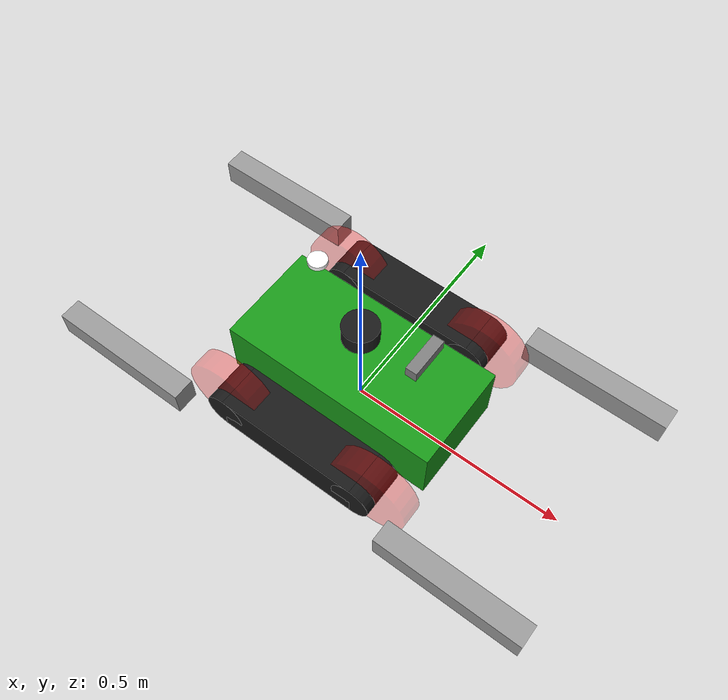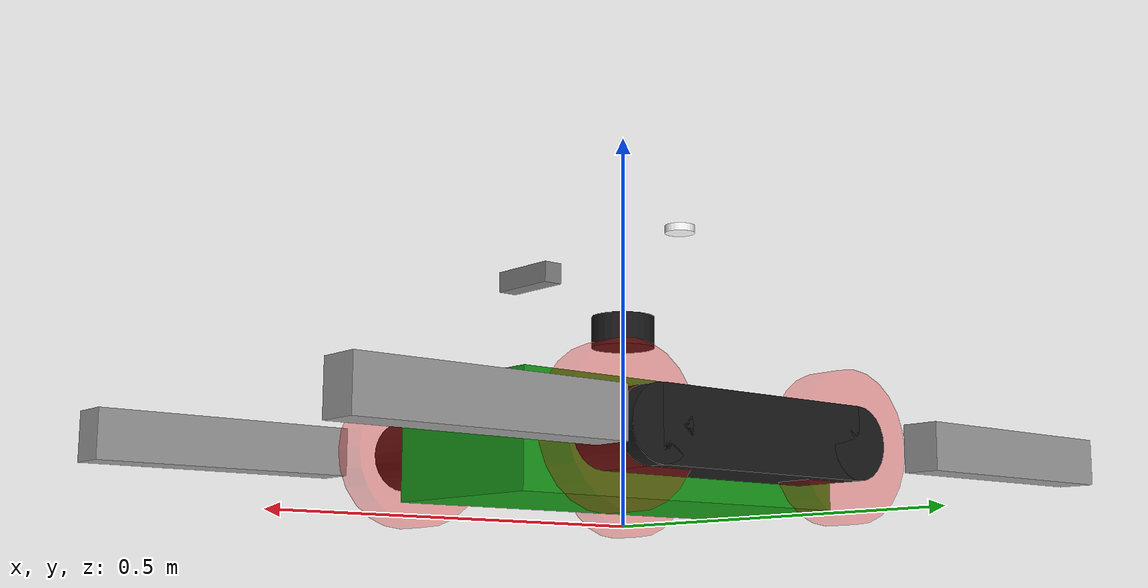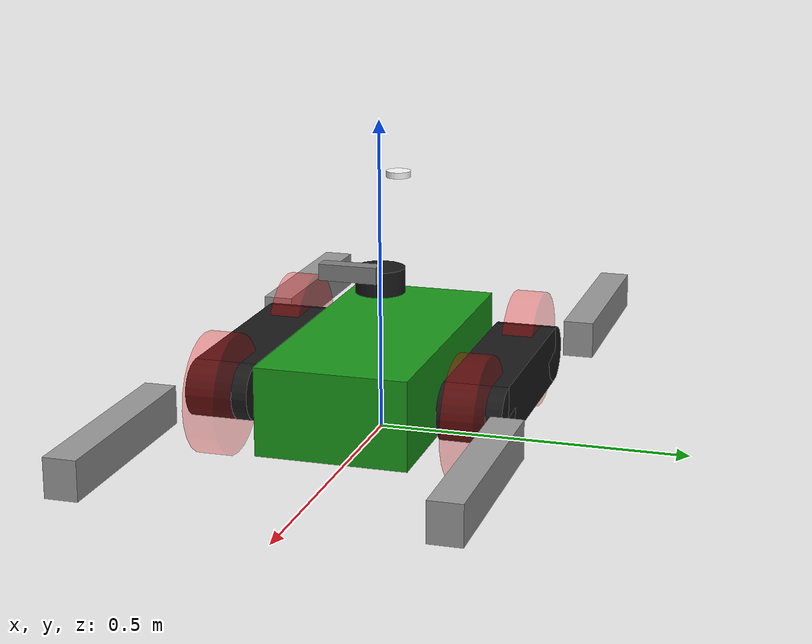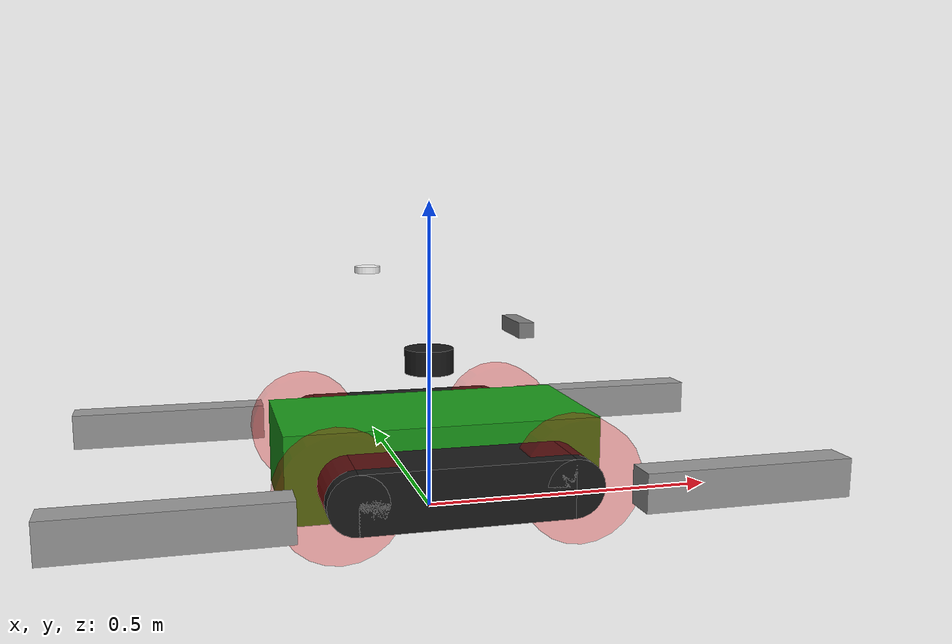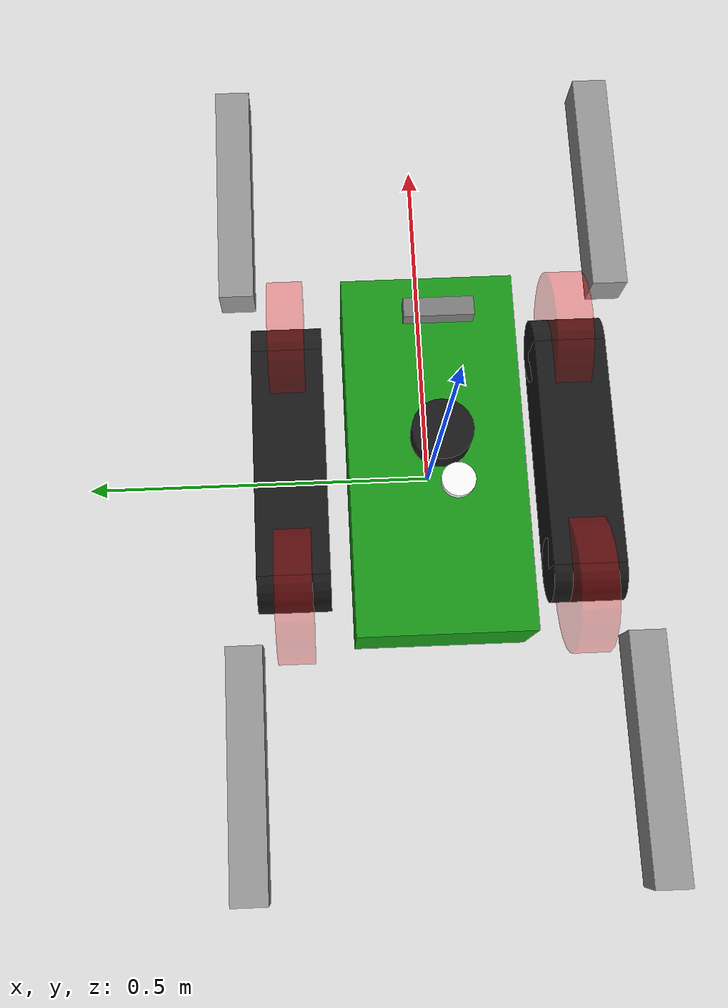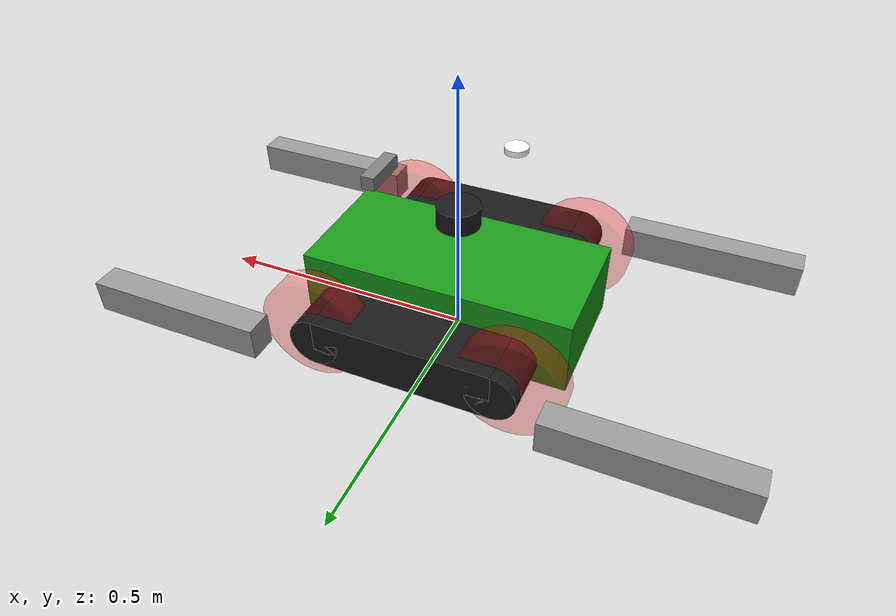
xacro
<?xml version="1.0"?>
<robot name="tracked_mower" xmlns:xacro="http://ros.org/wiki/xacro">

  <xacro:property name="base_mass" value="13.14"/>
  <xacro:property name="base_x" value="0.50"/>
  <xacro:property name="base_y" value="0.24"/>
  <xacro:property name="base_z" value="0.14"/>

  <xacro:property name="track_mass" value="6.06"/>
  <xacro:property name="track_width" value="0.10"/>
  <xacro:property name="track_length" value="0.50"/> <xacro:property name="track_height" value="0.09"/>
  <xacro:property name="track_offset_y" value="0.20"/> <xacro:property name="drive_wheel_radius" value="0.095"/> <xacro:property name="drive_wheel_width" value="0.05"/>

  <link name="base_footprint"/>

  <joint name="base_joint" type="fixed">
    <parent link="base_footprint"/>
    <child link="base_link"/>
    <origin xyz="0 0 ${drive_wheel_radius}" rpy="0 0 0"/>
  </joint>

  <link name="base_link">
    <visual>
      <origin xyz="0 0 0"/>
      <geometry>
        <box size="${base_x} ${base_y} ${base_z}"/>
      </geometry>
      <material name="Green">
        <color rgba="0.1 0.6 0.1 1.0"/>
      </material>
    </visual>
    <collision>
      <geometry>
        <box size="${base_x} ${base_y} ${base_z}"/>
      </geometry>
    </collision>
    <inertial>
      <mass value="${base_mass}"/>
      <inertia ixx="0.1" ixy="0" ixz="0" iyy="0.34" iyz="0" izz="0.30"/>
    </inertial>
  </link>

  <xacro:macro name="visual_track" params="prefix reflect">
    <link name="${prefix}_track_mid_visual">
      <visual>
        <geometry>
          <box size="${track_length - 0.18} ${track_width} ${track_height}"/>
        </geometry>
        <material name="Black">
          <color rgba="0.1 0.1 0.1 1.0"/>
        </material>
      </visual>
      </link>

    <joint name="${prefix}_track_mid_joint" type="fixed">
      <parent link="base_link"/>
      <child link="${prefix}_track_mid_visual"/>
      <origin xyz="0 ${reflect * track_offset_y} 0" rpy="0 0 0"/>
    </joint>

    <link name="${prefix}_track_front_visual">
      <visual>
        <geometry>
          <cylinder radius="${track_height / 2}" length="${track_width}"/>
        </geometry>
        <material name="Black"/>
      </visual>
    </link>

    <joint name="${prefix}_track_front_joint" type="fixed">
      <parent link="base_link"/>
      <child link="${prefix}_track_front_visual"/>
      <origin xyz="${(track_length - 0.18) / 2} ${reflect * track_offset_y} 0" rpy="1.5708 0 0"/>
    </joint>

    <link name="${prefix}_track_rear_visual">
      <visual>
        <geometry>
          <cylinder radius="${track_height / 2}" length="${track_width}"/>
        </geometry>
        <material name="Black"/>
      </visual>
    </link>

    <joint name="${prefix}_track_rear_joint" type="fixed">
      <parent link="base_link"/>
      <child link="${prefix}_track_rear_visual"/>
      <origin xyz="-${(track_length - 0.18) / 2} ${reflect * track_offset_y} 0" rpy="1.5708 0 0"/>
    </joint>
  </xacro:macro>

  <xacro:visual_track prefix="left" reflect="1"/>
  <xacro:visual_track prefix="right" reflect="-1"/>

  <xacro:macro name="drive_wheel" params="prefix location reflect_x reflect_y">
    <link name="${prefix}_${location}_wheel">
      <visual>
        <geometry>
          <cylinder radius="${drive_wheel_radius}" length="${drive_wheel_width}"/>
        </geometry>
        <material name="Transparent">
          <color rgba="1 0 0 0.3"/>
        </material>
      </visual>
      <collision>
        <geometry>
          <cylinder radius="${drive_wheel_radius}" length="${drive_wheel_width}"/>
        </geometry>
        <surface>
          <friction>
            <ode>
              <mu>2.0</mu>
              <mu2>2.0</mu2>
              <fdir1>1 0 0</fdir1>
              <slip1>0.0</slip1>
              <slip2>0.0</slip2>
            </ode>
          </friction>
          <contact>
            <ode>
              <kp>10000000.0</kp>
              <kd>1.0</kd>
            </ode>
          </contact>
        </surface>
      </collision>
      <inertial>
        <mass value="2.0"/>
        <inertia ixx="0.01" ixy="0" ixz="0" iyy="0.01" iyz="0" izz="0.01"/>
      </inertial>
    </link>

    <joint name="${prefix}_${location}_wheel_joint" type="continuous">
      <parent link="base_link"/>
      <child link="${prefix}_${location}_wheel"/>
      <origin xyz="${reflect_x * 0.18} ${reflect_y * track_offset_y} 0" rpy="-1.5708 0 0"/>
      <axis xyz="0 0 1"/>
    </joint>
  </xacro:macro>

  <xacro:drive_wheel prefix="front" location="left"  reflect_x="1"  reflect_y="1"/>
  <xacro:drive_wheel prefix="front" location="right" reflect_x="1"  reflect_y="-1"/>
  <xacro:drive_wheel prefix="rear"  location="left"  reflect_x="-1" reflect_y="1"/>
  <xacro:drive_wheel prefix="rear"  location="right" reflect_x="-1" reflect_y="-1"/>

  <xacro:macro name="flipper" params="prefix location reflect_x reflect_y">
    <link name="${prefix}_${location}_flipper">
      <visual>
        <origin xyz="${reflect_x * 0.165} 0 0" rpy="0 0 0"/> <geometry>
           <box size="0.33 0.05 0.06"/> </geometry>
        <material name="Grey">
          <color rgba="0.6 0.6 0.6 1.0"/>
        </material>
      </visual>
      <collision>
        <origin xyz="${reflect_x * 0.165} 0 0" rpy="0 0 0"/>
        <geometry>
           <box size="0.33 0.05 0.06"/>
        </geometry>
      </collision>
      <inertial>
        <mass value="0.75"/>
        <inertia ixx="0.001" ixy="0" ixz="0" iyy="0.01" iyz="0" izz="0.01"/>
      </inertial>
    </link>

    <joint name="${prefix}_${location}_flipper_joint" type="revolute">
      <parent link="base_link"/>
      <child link="${prefix}_${location}_flipper"/>
      <origin xyz="${reflect_x * 0.25} ${reflect_y * 0.27} 0" rpy="0 0 0"/>
      <axis xyz="0 1 0"/>
      <limit lower="-1.57" upper="1.57" effort="50" velocity="1.0"/>
    </joint>
  </xacro:macro>

  <xacro:flipper prefix="front" location="left"  reflect_x="1"  reflect_y="1"/>
  <xacro:flipper prefix="front" location="right" reflect_x="1"  reflect_y="-1"/>
  <xacro:flipper prefix="rear"  location="left"  reflect_x="-1" reflect_y="1"/>
  <xacro:flipper prefix="rear"  location="right" reflect_x="-1" reflect_y="-1"/>

  <link name="laser_frame">
    <visual>
      <geometry>
        <cylinder radius="0.04" length="0.04"/>
      </geometry>
      <material name="black">
          <color rgba="0.1 0.1 0.1 1.0"/>
      </material>
    </visual>
  </link>
  <joint name="laser_joint" type="fixed">
    <parent link="base_link"/>
    <child link="laser_frame"/>
    <origin xyz="0 0 0.15" rpy="0 0 0"/>
  </joint>

  <link name="imu_link"/>
  <joint name="imu_joint" type="fixed">
    <parent link="base_link"/>
    <child link="imu_link"/>
    <origin xyz="0 0 0" rpy="0 0 0"/>
  </joint>

  <link name="camera_link">
    <visual>
      <geometry><box size="0.025 0.09 0.025"/></geometry>
      <material name="Pink"><color rgba="0.5 0.5 0.5 1.0"/></material>
    </visual>
    <collision>
      <geometry><box size="0.025 0.09 0.025"/></geometry>
    </collision>
    <inertial>
      <mass value="0.1"/>
      <inertia ixx="0.0001" ixy="0" ixz="0" iyy="0.0001" iyz="0" izz="0.0001"/>
    </inertial>
  </link>

  <joint name="camera_joint" type="fixed">
    <parent link="base_link"/>
    <child link="camera_link"/>
    <origin xyz="0.15 0 0.2" rpy="0 0 0"/>
  </joint>

  <link name="camera_depth_frame"/>
  <joint name="camera_depth_joint" type="fixed">
    <parent link="camera_link"/>
    <child link="camera_depth_frame"/>
    <origin xyz="0 0 0" rpy="0 0 0"/>
  </joint>

  <link name="gps_link">
    <visual>
      <geometry><cylinder radius="0.02" length="0.01"/></geometry>
      <material name="Black"><color rgba="1 1 1 1.0"/></material>
    </visual>
    <collision>
      <geometry><cylinder radius="0.02" length="0.01"/></geometry>
    </collision>
    <inertial>
      <mass value="0.05"/>
      <inertia ixx="0.0001" ixy="0" ixz="0" iyy="0.0001" iyz="0" izz="0.0001"/>
    </inertial>
  </link>

  <joint name="gps_joint" type="fixed">
    <parent link="base_link"/>
    <child link="gps_link"/>
    <origin xyz="-0.1 0 0.3" rpy="0 0 0"/>
  </joint>

  <gazebo>
    <plugin name="skid_steer_drive" filename="libgazebo_ros_diff_drive.so">
      <ros>
        <namespace>/</namespace>
        </ros>

      <num_wheel_pairs>2</num_wheel_pairs>

      <left_joint>front_left_wheel_joint</left_joint>
      <left_joint>rear_left_wheel_joint</left_joint>
      <right_joint>front_right_wheel_joint</right_joint>
      <right_joint>rear_right_wheel_joint</right_joint>

      <wheel_separation>${track_offset_y * 2}</wheel_separation>
      <wheel_diameter>${drive_wheel_radius * 2}</wheel_diameter>

      <max_wheel_torque>80</max_wheel_torque>
      <max_wheel_acceleration>2.0</max_wheel_acceleration>

      <publish_odom>true</publish_odom>
      <publish_odom_tf>true</publish_odom_tf>
      <publish_wheel_tf>false</publish_wheel_tf> <odometry_frame>odom</odometry_frame>
      <robot_base_frame>base_footprint</robot_base_frame>
    </plugin>

    <plugin name="joint_state" filename="libgazebo_ros_joint_state_publisher.so">
      <ros>
        <namespace>/</namespace>
        <remapping>~/out:=joint_states</remapping>
      </ros>
      <update_rate>30</update_rate>
      <joint_name>front_left_flipper_joint</joint_name>
      <joint_name>front_right_flipper_joint</joint_name>
      <joint_name>rear_left_flipper_joint</joint_name>
      <joint_name>rear_right_flipper_joint</joint_name>
    </plugin>

    <sensor name="lidar" type="ray">
      <pose> 0 0 0 0 0 0 </pose>
      <visualize>false</visualize>
      <update_rate>10</update_rate>
      <ray>
        <scan>
          <horizontal>
            <samples>360</samples>
            <min_angle>-3.14</min_angle>
            <max_angle>3.14</max_angle>
          </horizontal>
        </scan>
        <range>
          <min>0.3</min>
          <max>12</max>
        </range>
      </ray>
      <plugin name="laser_controller" filename="libgazebo_ros_ray_sensor.so">
        <ros>
          <argument>~/out:=scan</argument>
        </ros>
        <output_type>sensor_msgs/LaserScan</output_type>
        <frame_name>laser_frame</frame_name>
      </plugin>
    </sensor>

    <sensor name="imu_sensor" type="imu">
      <plugin filename="libgazebo_ros_imu_sensor.so" name="imu_plugin">
        <ros>
          <argument>~/out:=imu</argument>
        </ros>
        <frame_name>imu_link</frame_name>
      </plugin>
      <always_on>true</always_on>
      <update_rate>100</update_rate>
    </sensor>
  </gazebo>

</robot>
